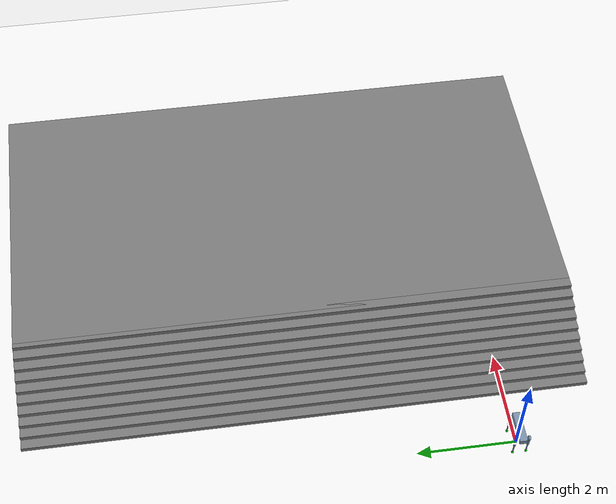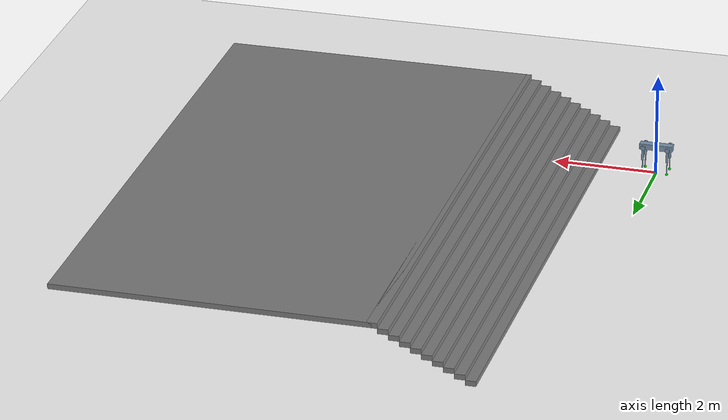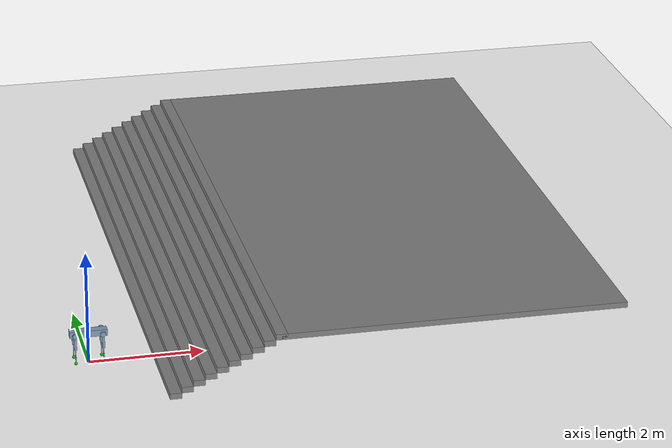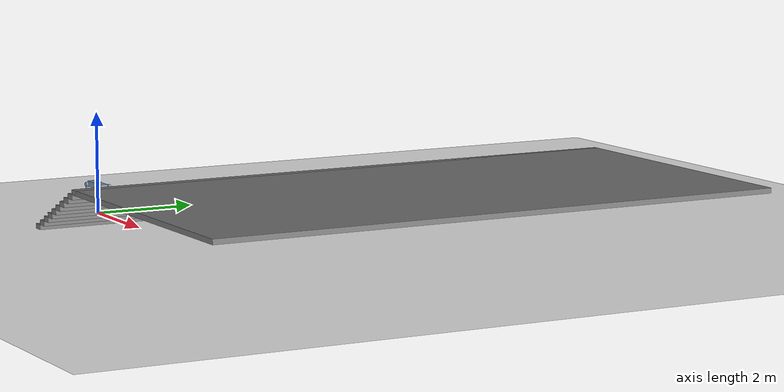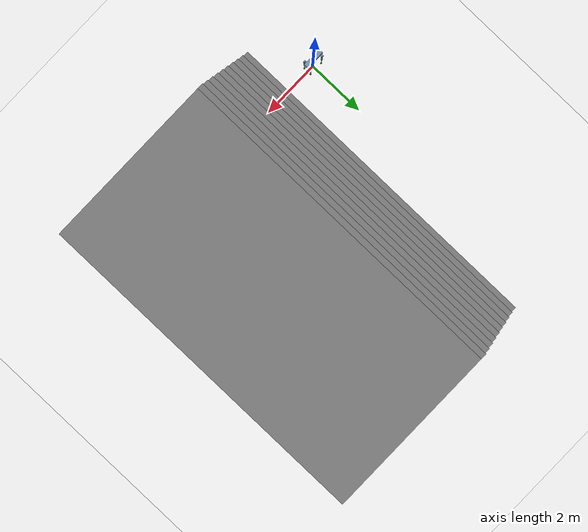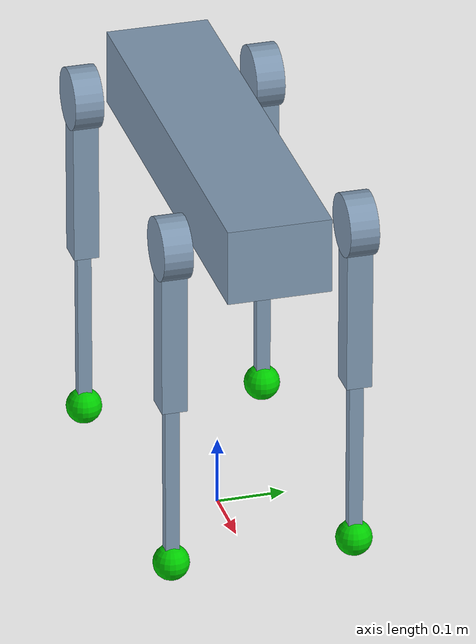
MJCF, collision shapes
<mujoco model="go1 feetonly flat terrain scene">
  <include file="aliengo.xml"/>

  <statistic center="0 0 0.1" extent="0.8" meansize="0.04"/>

  <visual>
    <headlight diffuse=".8 .8 .8" ambient=".2 .2 .2" specular="1 1 1"/>
    <rgba force="1 0 0 1"/>
    <global azimuth="120" elevation="-20"/>
    <map force="0.01"/>
    <scale forcewidth="0.3" contactwidth="0.5" contactheight="0.2"/>
    <quality shadowsize="8192"/>
  </visual>
  <default>
    <default class="stairs">
      <geom material="stairs" contype="1" conaffinity="0"/>
    </default>
  </default>
  <asset>
    <texture type="skybox" builtin="gradient" rgb1="1 1 1" rgb2="1 1 1" width="800" height="800"/>
    <texture type="2d" name="groundplane" builtin="checker" mark="edge" rgb1="1 1 1" rgb2="1 1 1" markrgb="0 0 0"
      width="300" height="300"/>
    <material name="groundplane" texture="groundplane" texuniform="true" texrepeat="5 5" reflectance="0"/>
    <material name="stairs" rgba="1 1 1 1" reflectance=".8"/>
  </asset>

  <worldbody>
    <geom name="floor" size="0 0 0.01" type="plane" material="groundplane" contype="1" conaffinity="0" priority="1"
      friction="0.6" condim="3"/>

    <geom pos="1.2 4.0 0.05" type="box" size="0.1 5.75 0.05" quat="1.0 0.0 0.0 0.0" />
    <geom pos="1.4 4.0 0.15" type="box" size="0.1 5.75 0.05" quat="1.0 0.0 0.0 0.0" />
    <geom pos="1.6 4.0 0.25" type="box" size="0.1 5.75 0.05" quat="1.0 0.0 0.0 0.0" />
    <geom pos="1.8 4.0 0.35" type="box" size="0.1 5.75 0.05" quat="1.0 0.0 0.0 0.0" />
    <geom pos="2.0 4.0 0.45" type="box" size="0.1 5.75 0.05" quat="1.0 0.0 0.0 0.0" />
    <geom pos="2.2 4.0 0.55" type="box" size="0.1 5.75 0.05" quat="1.0 0.0 0.0 0.0" />
    <geom pos="2.4 4.0 0.65" type="box" size="0.1 5.75 0.05" quat="1.0 0.0 0.0 0.0" />
    <geom pos="2.6 4.0 0.75" type="box" size="0.1 5.75 0.05" quat="1.0 0.0 0.0 0.0" />
    <geom pos="2.8 4.0 0.85" type="box" size="0.1 5.75 0.05" quat="1.0 0.0 0.0 0.0" />
    <geom pos="3.0 4.0 0.95" type="box" size="0.1 5.75 0.05" quat="1.0 0.0 0.0 0.0" />
    <geom pos="6.0 4.0 0.95" type="box" size="3 5.75 0.05" quat="1.0 0.0 0.0 0.0" />

  </worldbody>

  <keyframe>
    <key name="home"
    qpos="
    0 0 0.54
    1 0 0 0
    0 0.6 1 0 0.6 1 0 0.6 1 0 0.6 1 "
    ctrl="0 0.6 1 0 0.6 1 0 0.6 1 0 0.6 1"/>
  </keyframe>
</mujoco>

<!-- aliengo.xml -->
<mujoco model="aliengo_description">
    <compiler angle="radian" meshdir="../meshes" />
    <size njmax="500" nconmax="100" nuser_actuator="1" />

    <option timestep="0.001" iterations="50" tolerance="1e-10" solver="Newton" jacobian="dense" cone="elliptic" impratio="100" />

    <default>
        <joint damping="2" armature="0.01" frictionloss="0.2" />
        <motor ctrllimited="false" forcelimited="false"/>

		<default class="collision">
			<geom condim="3" friction="0.6 0.3 0.3" rgba="0.5 0.6 0.7 1" group="3" />
		</default>
		<default class="visual">
			<geom condim="3" type="mesh" group="1" conaffinity="0" contype="0" rgba="0.2 0.2 0.2 1" />
		</default>
    </default>

    <visual>
        <map force="0.01" zfar="30"/>
        <rgba haze="0.15 0.25 0.35 1"/>
        <quality shadowsize="2048"/>
        <global offwidth="800" offheight="800"/>
    </visual>

    <asset>
        <mesh name="trunk_mesh" file="trunk.stl" />
        <mesh name="hip_mesh" file="hip.stl" />
        <mesh name="thigh_mirror_mesh" file="thigh_mirror.stl" />
	<mesh name="calf_mesh" file="calf.stl" />
        <mesh name="thigh_mesh" file="thigh.stl" />

        <texture type="skybox" builtin="gradient" rgb1="0.3 0.5 0.7" rgb2="0 0 0" width="512" height="512"/>
    </asset>

    <worldbody>
        <light mode="targetbodycom" target="trunk" directional="false" diffuse=".8 .8 .8" specular="0.3 0.3 0.3" pos="0 0 4.0" dir="0 0 -1"/>

	<!-- trunk -->
        <body name="trunk" pos="0 0 0.55">
            <inertial pos="0.00846406 0.00404455 -0.000762916" quat="-3.12625e-05 0.708321 0.00247254 0.705886" mass="9.042" diaginertia="0.174706 0.161175 0.033357" />
            <freejoint name="root"/>
            <geom class="collision" size="0.3235 0.075 0.056" type="box" />
	    <geom class="visual" mesh="trunk_mesh" />
	    <!-- site for root imu sensor -->
            <site name="imu" size="0.0005 0.0005 0.0005" pos="0 0 0" />
	    <!-- front right -->
	    <body name="FR_hip" pos="0.2399 -0.051 0">
		<inertial pos="-0.022191 -0.015144 -1.5e-05" quat="0.0135493 0.706835 -0.0117635 0.707151" mass="1.993" diaginertia="0.00558695 0.00491009 0.00290132" />
		<joint name="FR_hip_joint" axis="1 0 0" limited="true" range="-1.22173 1.22173" />
		<geom class="collision" size="0.046 0.0209" pos="0 -0.083 0" quat="0.707107 0.707107 0 0" type="cylinder" />
		<geom class="visual"  quat="0 1 0 0" mesh="hip_mesh" />
		<body name="FR_thigh" pos="0 -0.083 0">
		    <inertial pos="-0.005607 0.003877 -0.048199" quat="0.694544 -0.0335669 -0.031246 0.717987" mass="0.639" diaginertia="0.0058474 0.00571186 0.000324584" />
		    <joint name="FR_thigh_joint" axis="0 1 0" limited="false" />
		    <geom class="collision" size="0.125 0.0187 0.0215" pos="0 0 -0.125" quat="0.707107 0 0.707107 0" type="box" />
		    <geom class="visual" mesh="thigh_mirror_mesh" />
		    <body name="FR_calf" pos="0 0 -0.25">
			<inertial pos="0.00215606 4.88427e-05 -0.166671" quat="0.707462 0.00517582 0.00535172 0.706712" mass="0.267" diaginertia="0.00690975 0.00689712 5.4885e-05" />
			<joint name="FR_calf_joint" axis="0 1 0" limited="true" range="-2.77507 -0.645772" />
			<geom class="collision" size="0.125 0.0104 0.008" pos="0 0 -0.125" quat="0.707107 0 0.707107 0" type="box" />
			<geom class="visual" mesh="calf_mesh" />
			<body name="FR_foot" pos="0 0 -0.25">
			    <geom class="collision" size="0.0265" pos="0 0 0" rgba="0 0.8 0 1" type="sphere" />
			</body>
		    </body>
		</body>
	    </body>
	    <!-- front left -->
	    <body name="FL_hip" pos="0.2399 0.051 0">
		<inertial pos="-0.022191 0.015144 -1.5e-05" quat="-0.0135493 0.706835 0.0117635 0.707151" mass="1.993" diaginertia="0.00558695 0.00491009 0.00290132" />
		<joint name="FL_hip_joint" axis="1 0 0" limited="true" range="-1.22173 1.22173" />
		<geom class="collision" size="0.046 0.0209" pos="0 0.083 0" quat="0.707107 0.707107 0 0" type="cylinder" />
		<geom class="visual" quat="1 0 0 0" mesh="hip_mesh" />
		<body name="FL_thigh" pos="0 0.083 0">
		    <inertial pos="-0.005607 -0.003877 -0.048199" quat="0.717987 -0.031246 -0.0335669 0.694544" mass="0.639" diaginertia="0.0058474 0.00571186 0.000324584" />
		    <joint name="FL_thigh_joint" axis="0 1 0" limited="false" />
		    <geom class="collision" size="0.125 0.0187 0.0215" pos="0 0 -0.125" quat="0.707107 0 0.707107 0" type="box" />
		    <geom class="visual" mesh="thigh_mesh" />
		    <body name="FL_calf" pos="0 0 -0.25">
			<inertial pos="0.00215606 4.88427e-05 -0.166671" quat="0.707462 0.00517582 0.00535172 0.706712" mass="0.267" diaginertia="0.00690975 0.00689712 5.4885e-05" />
			<joint name="FL_calf_joint" axis="0 1 0" limited="true" range="-2.77507 -0.645772" />
			<geom class="collision" size="0.125 0.0104 0.008" pos="0 0 -0.125" quat="0.707107 0 0.707107 0" type="box" />
			<geom class="visual" mesh="calf_mesh" />
			<body name="FL_foot" pos="0 0 -0.25">
			    <geom class="collision" size="0.0265" pos="0 0 0" rgba="0 0.8 0 1" type="sphere" />
			</body>
		    </body>
		</body>
	    </body>
	    <!-- rear right -->
	    <body name="RR_hip" pos="-0.2399 -0.051 0">
		<inertial pos="0.022191 -0.015144 -1.5e-05" quat="-0.0117635 0.707151 0.0135493 0.706835" mass="1.993" diaginertia="0.00558695 0.00491009 0.00290132" />
		<joint name="RR_hip_joint" axis="1 0 0" limited="true" range="-1.22173 1.22173" />
		<geom class="collision" size="0.046 0.0209" pos="0 -0.083 0" quat="0.707107 0.707107 0 0" type="cylinder" />
		<geom class="visual" quat="0 0 0 -1" mesh="hip_mesh" />
		<body name="RR_thigh" pos="0 -0.083 0">
		    <inertial pos="-0.005607 0.003877 -0.048199" quat="0.694544 -0.0335669 -0.031246 0.717987" mass="0.639" diaginertia="0.0058474 0.00571186 0.000324584" />
		    <joint name="RR_thigh_joint" axis="0 1 0" limited="false" />
		    <geom class="collision" size="0.125 0.0187 0.0215" pos="0 0 -0.125" quat="0.707107 0 0.707107 0" type="box" />
		    <geom class="visual" mesh="thigh_mirror_mesh" />
		    <body name="RR_calf" pos="0 0 -0.25">
			<inertial pos="0.00215606 4.88427e-05 -0.166671" quat="0.707462 0.00517582 0.00535172 0.706712" mass="0.267" diaginertia="0.00690975 0.00689712 5.4885e-05" />
			<joint name="RR_calf_joint" axis="0 1 0" limited="true" range="-2.77507 -0.645772" />
			<geom class="collision" size="0.125 0.0104 0.008" pos="0 0 -0.125" quat="0.707107 0 0.707107 0" type="box" />
			<geom class="visual" mesh="calf_mesh" />
			<body name="RR_foot" pos="0 0 -0.25">
			    <geom class="collision" size="0.0265" pos="0 0 0" rgba="0 0.8 0 1" type="sphere" />
			</body>
		    </body>
		</body>
	    </body>
	    <!-- rear left -->
	    <body name="RL_hip" pos="-0.2399 0.051 0">
		<inertial pos="0.022191 0.015144 -1.5e-05" quat="0.0117635 0.707151 -0.0135493 0.706835" mass="1.993" diaginertia="0.00558695 0.00491009 0.00290132" />
		<joint name="RL_hip_joint" axis="1 0 0" limited="true" range="-1.22173 1.22173" />
		<geom class="collision" size="0.046 0.0209" pos="0 0.083 0" quat="0.707107 0.707107 0 0" type="cylinder" />
		<geom class="visual" quat="0 0 1 0" mesh="hip_mesh" />
		<body name="RL_thigh" pos="0 0.083 0">
		    <inertial pos="-0.005607 -0.003877 -0.048199" quat="0.717987 -0.031246 -0.0335669 0.694544" mass="0.639" diaginertia="0.0058474 0.00571186 0.000324584" />
		    <joint name="RL_thigh_joint" axis="0 1 0" limited="false" />
		    <geom class="collision" size="0.125 0.0187 0.0215" pos="0 0 -0.125" quat="0.707107 0 0.707107 0" type="box" />
		    <geom class="visual" mesh="thigh_mesh" />
		    <body name="RL_calf" pos="0 0 -0.25">
			<inertial pos="0.00215606 4.88427e-05 -0.166671" quat="0.707462 0.00517582 0.00535172 0.706712" mass="0.267" diaginertia="0.00690975 0.00689712 5.4885e-05" />
			<joint name="RL_calf_joint" axis="0 1 0" limited="true" range="-2.77507 -0.645772" />
			<geom class="collision" size="0.125 0.0104 0.008" pos="0 0 -0.125" quat="0.707107 0 0.707107 0" type="box" />
			<geom class="visual" mesh="calf_mesh" />
			<body name="RL_foot" pos="0 0 -0.25">
			    <geom class="collision" size="0.0265" pos="0 0 0" rgba="0 0.8 0 1" type="sphere" />
			</body>
		    </body>
		</body>
	    </body>
	</body>
    </worldbody>

    <actuator>
        <!-- FR leg -->
        <motor name="FR_hip_motor" joint="FR_hip_joint" />
        <motor name="FR_thigh_motor" joint="FR_thigh_joint" />
        <motor name="FR_calf_motor" joint="FR_calf_joint" />
        <!-- FL leg -->
        <motor name="FL_hip_motor" joint="FL_hip_joint" />
        <motor name="FL_thigh_motor" joint="FL_thigh_joint" />
        <motor name="FL_calf_motor" joint="FL_calf_joint" />
        <!-- RR leg -->
        <motor name="RR_hip_motor" joint="RR_hip_joint" />
        <motor name="RR_thigh_motor" joint="RR_thigh_joint" />
        <motor name="RR_calf_motor" joint="RR_calf_joint" />
        <!-- RL leg -->
        <motor name="RL_hip_motor" joint="RL_hip_joint" />
        <motor name="RL_thigh_motor" joint="RL_thigh_joint" />
        <motor name="RL_calf_motor" joint="RL_calf_joint" />
    </actuator>

    <sensor>
	<!-- imu -->
	<gyro          name="Accelerometer_gyro"     site="imu" />
	<accelerometer name="Accelerometer_accelerometer"    site="imu" />
    </sensor>

</mujoco>
